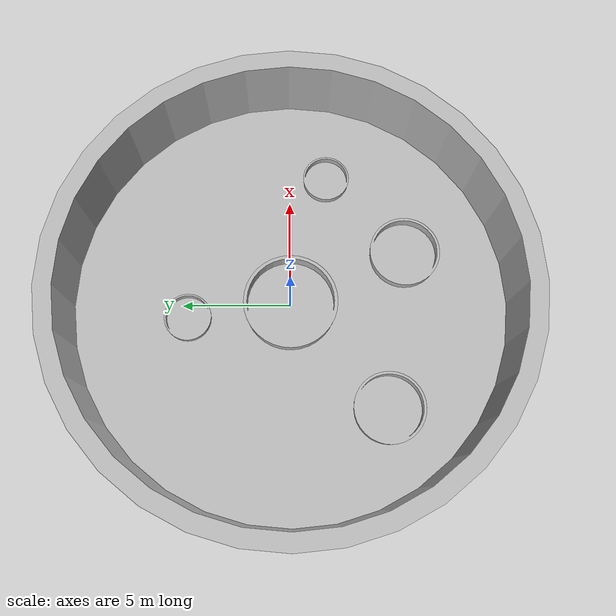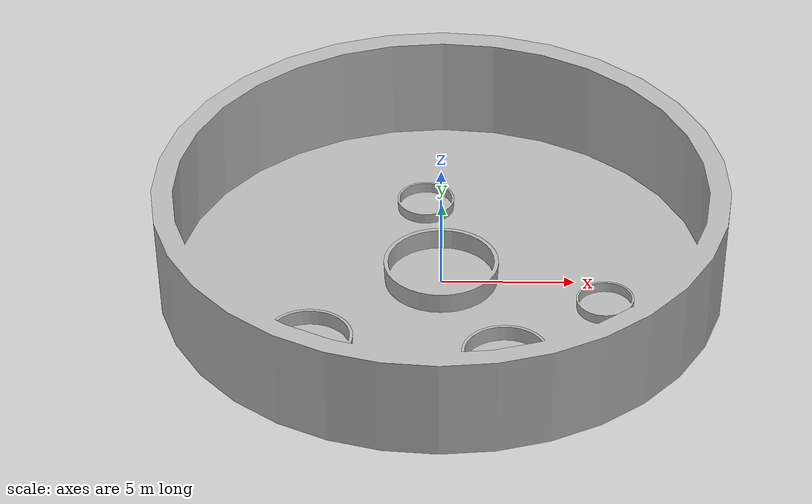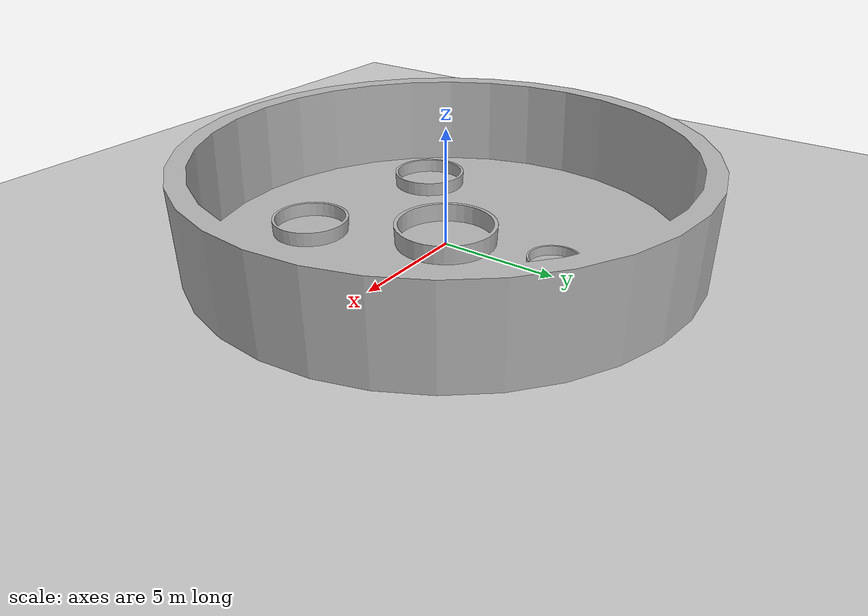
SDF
<sdf version="1.7">
 <world name="default">
  <light name="sun" type="directional">
   <pose>0 0 10 0 -0 0</pose>
   <diffuse>0.8 0.8 0.8 1</diffuse>
   <specular>0.2 0.2 0.2 1</specular>
   <attenuation>
    <range>1000</range>
    <constant>0.9</constant>
    <linear>0.01</linear>
    <quadratic>0.001</quadratic>
   </attenuation>
   <direction>-0.5 0.1 -0.9</direction>
   <spot><inner_angle>0</inner_angle><outer_angle>0</outer_angle><falloff>0</falloff></spot>
  </light>
  <model name="ground_plane">
   <static>1</static>
   <link name="link">
    <collision name="collision">
     <geometry><plane><normal>0 0 1</normal><size>100 100</size></plane></geometry>
     <surface><friction><ode><mu>100</mu><mu2>50</mu2></ode></friction></surface>
    </collision>
    <visual name="visual">
     <cast_shadows>0</cast_shadows>
     <geometry><plane><normal>0 0 1</normal><size>100 100</size></plane></geometry>
     <material>
      <script><uri>file://media/materials/scripts/gazebo.material</uri><name>Gazebo/Grey</name></script>
     </material>
    </visual>
   </link>
  </model>
  <gravity>0 0 -9.8</gravity>
  <magnetic_field>6e-06 2.3e-05 -4.2e-05</magnetic_field>
  <atmosphere type="adiabatic"/>
  <physics type="ode">
   <max_step_size>0.001</max_step_size>
   <real_time_factor>1</real_time_factor>
   <real_time_update_rate>1000</real_time_update_rate>
  </physics>
  <scene><ambient>0.4 0.4 0.4 1</ambient><background>0.7 0.7 0.7 1</background><shadows>1</shadows></scene>
  <audio><device>default</device></audio>
  <spherical_coordinates>
   <surface_model>EARTH_WGS84</surface_model>
   <latitude_deg>0</latitude_deg>
   <longitude_deg>0</longitude_deg>
   <elevation>0</elevation>
   <heading_deg>0</heading_deg>
  </spherical_coordinates>
  <model name="ring_wall">
   <static>1</static>
   <link name="link">
    <collision name="surface">
     <pose>0 0 2 0 -0 0</pose>
     <geometry><mesh><uri>model://ring_wall/meshes/ring_wall.obj</uri><scale>0.1 0.1 0.1</scale></mesh></geometry>
    </collision>
    <visual name="visual">
     <pose>0 0 2.1 0 -0 0</pose>
     <geometry><mesh><uri>model://ring_wall/meshes/ring_wall.obj</uri><scale>0.1 0.1 0.1</scale></mesh></geometry>
    </visual>
   </link>
  </model>
  <model name="ring_wall_type1">
   <static>1</static>
   <link name="link">
    <collision name="surface">
     <pose>0 0 0.54 0 -0 0</pose>
     <geometry>
      <mesh><uri>model://ring_wall/meshes/ring_wall.obj</uri><scale>0.02 0.02 0.02</scale></mesh>
     </geometry>
    </collision>
    <visual name="visual">
     <pose>0 0 0.54 0 -0 0</pose>
     <geometry>
      <mesh><uri>model://ring_wall/meshes/ring_wall.obj</uri><scale>0.02 0.02 0.02</scale></mesh>
     </geometry>
    </visual>
   </link>
  </model>
  <model name="ring_wall_type2">
   <static>1</static>
   <link name="link">
    <collision name="surface">
     <pose>0 0 0.42 0 -0 0</pose>
     <geometry>
      <mesh><uri>model://ring_wall/meshes/ring_wall.obj</uri><scale>0.015 0.015 0.015</scale></mesh>
     </geometry>
    </collision>
    <visual name="visual">
     <pose>0 0 0.42 0 -0 0</pose>
     <geometry>
      <mesh><uri>model://ring_wall/meshes/ring_wall.obj</uri><scale>0.015 0.015 0.015</scale></mesh>
     </geometry>
    </visual>
   </link>
   <pose>-4.83993 -4.37932 0 0 -0 0</pose>
  </model>
  <model name="ring_wall_type3">
   <static>1</static>
   <link name="link">
    <collision name="surface">
     <pose>0 0 0.31 0 -0 0</pose>
     <geometry>
      <mesh><uri>model://ring_wall/meshes/ring_wall.obj</uri><scale>0.01 0.01 0.01</scale></mesh>
     </geometry>
    </collision>
    <visual name="visual">
     <pose>0 0 0.31 0 -0 0</pose>
     <geometry>
      <mesh><uri>model://ring_wall/meshes/ring_wall.obj</uri><scale>0.01 0.01 0.01</scale></mesh>
     </geometry>
    </visual>
   </link>
   <pose>6.12969 -1.73015 0 0 -0 0</pose>
  </model>
  <model name="ring_wall_type3_clone">
   <static>1</static>
   <link name="link">
    <collision name="surface">
     <pose>0 0 0.31 0 -0 0</pose>
     <geometry>
      <mesh><uri>model://ring_wall/meshes/ring_wall.obj</uri><scale>0.01 0.01 0.01</scale></mesh>
     </geometry>
    </collision>
    <visual name="visual">
     <pose>0 0 0.31 0 -0 0</pose>
     <geometry>
      <mesh><uri>model://ring_wall/meshes/ring_wall.obj</uri><scale>0.01 0.01 0.01</scale></mesh>
     </geometry>
    </visual>
   </link>
   <pose>-0.6178 4.72319 0 0 -0 0</pose>
  </model>
  <model name="ring_wall_type2_clone">
   <static>1</static>
   <link name="link">
    <collision name="surface">
     <pose>0 0 0.42 0 -0 0</pose>
     <geometry>
      <mesh><uri>model://ring_wall/meshes/ring_wall.obj</uri><scale>0.015 0.015 0.015</scale></mesh>
     </geometry>
    </collision>
    <visual name="visual">
     <pose>0 0 0.42 0 -0 0</pose>
     <geometry>
      <mesh><uri>model://ring_wall/meshes/ring_wall.obj</uri><scale>0.015 0.015 0.015</scale></mesh>
     </geometry>
    </visual>
   </link>
   <pose>2.3924 -5.32222 0 0 -0 0</pose>
  </model>
 </world>
</sdf>
